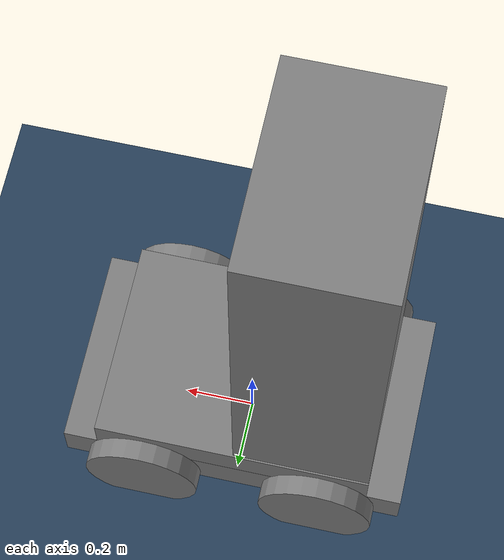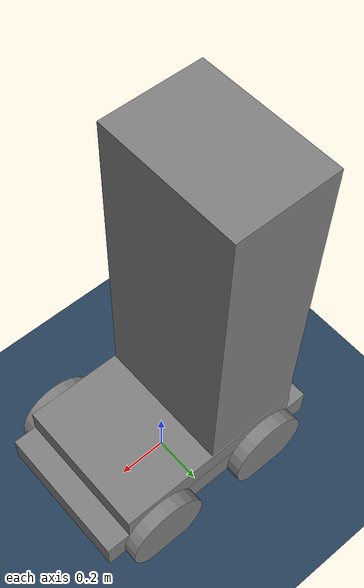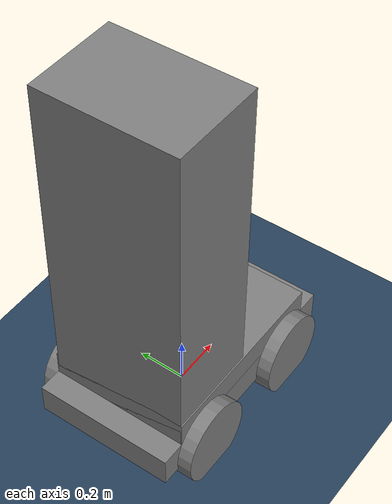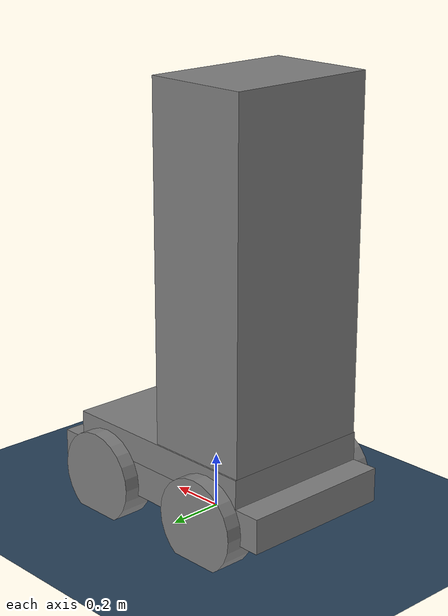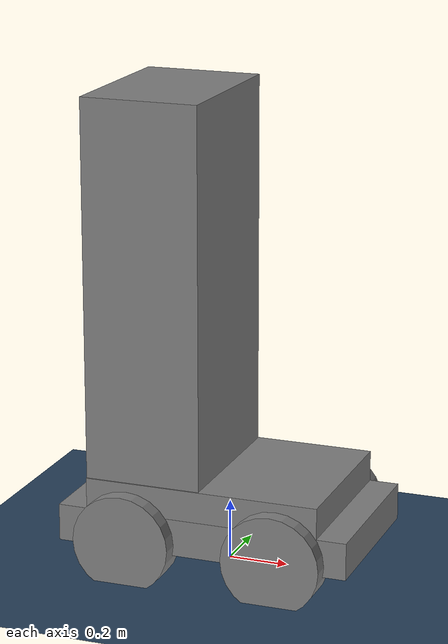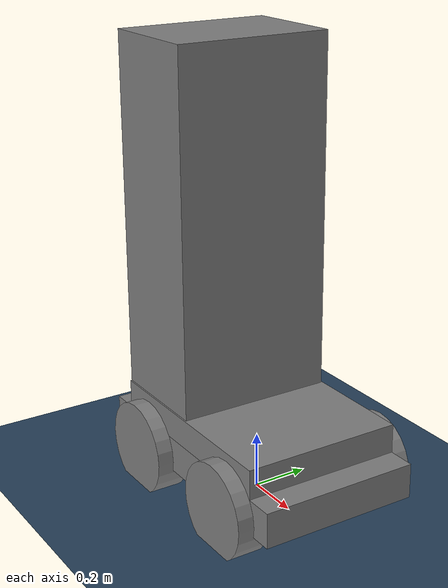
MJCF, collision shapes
<mujoco model="husky scene">
  <include file="husky.xml"/>

  <statistic center="0.2 0 0.4" extent=".8"/>

  <visual>
    <headlight diffuse="0.6 0.6 0.6" ambient="0.3 0.3 0.3" specular="0 0 0"/>
    <rgba haze="0.15 0.25 0.35 1"/>
    <global azimuth="120" elevation="-20"/>
  </visual>

  <asset>
    <texture type="skybox" builtin="gradient" rgb1="0.3 0.5 0.7" rgb2="0 0 0" width="512" height="3072"/>
    <texture type="2d" name="groundplane" builtin="checker" mark="edge" rgb1="0.2 0.3 0.4" rgb2="0.1 0.2 0.3"
      markrgb="0.8 0.8 0.8" width="300" height="300"/>
    <material name="groundplane" texture="groundplane" texuniform="true" texrepeat="5 5" reflectance="0.2"/>
  </asset>

  <worldbody>
    <light pos="0 0 1.5" dir="0 0 -1" directional="true"/>
    <geom name="floor" size="0 0 0.05" type="plane" material="groundplane"/>
  </worldbody>
</mujoco>

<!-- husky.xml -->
<mujoco model="husky">
    <compiler angle="radian" meshdir="assets"/>

  <option integrator="implicitfast"/>

    <default>
        <default class="husky">
            <material specular="0.5" shininess="0.25"/>
            <joint armature="0.1" damping="1"/>
            <position inheritrange="1"/>
            <default class="visual">
                <geom type="mesh" group="2" contype="0" conaffinity="0"/>
            </default>
            <default class="collision">
                <geom type="mesh" group="3" mass="0" density="0"/>
            </default>
            <site size="0.001" rgba="0.5 0.5 0.5 0.3" group="4"/>
        </default>
    </default>

    <asset>
        <material class="husky" name="husky_orange" rgba="0.996 0.941 0.412 1.0"/>
        <material class="husky" name="husky_black" rgba="0.231 0.231 0.231 1.0"/>

        <mesh name="base_link"     file="base_link.stl"/>
        <mesh name="wheel"         file="wheel.stl"/>
        <mesh name="bumper"        file="bumper.stl"/>
        <mesh name="top_chassis"   file="top_chassis.stl"/>
        <mesh name="top_structure" file="roas_dyros.STL"/>
        <mesh name="top_plate"     file="top_plate.stl"/>
        <mesh name="user_rail"     file="user_rail.stl"/>
    </asset>

    <worldbody>
        <body name="base_footprint" pos="0 0 0.1">
            <joint type="free" stiffness="0" damping="0" frictionloss="0" armature="0" />

            <body name="base" pos="0 0 0">
                <inertial pos="-0.00065 -0.085 0.062"  mass="46.034" fullinertia="0.6022 1.7386 2.0296 -0.02364 -0.1197 -0.001544"/>
                <geom class="collision" size="0.4937 0.28545 0.061875" pos="0 0 0.061875" type="box"/>
                <geom class="collision" size="0.39496 0.28545 0.051875" pos="0 0 0.175625" type="box"/>
                <geom class="visual" pos="0.272 0 0.245" type="mesh" mesh="user_rail" material="husky_black"/>
                <geom class="visual" pos="0.0812 0 0.245" type="mesh" mesh="top_plate" material="husky_black"/>
                <geom class="visual" pos="-0.48 0 0.091" quat="0 0 1 0" type="mesh" mesh="bumper" rgba="0.2 0.2 0.2 1.0"/>
                <geom class="visual" pos="0.48 0 0.091" type="mesh" mesh="bumper" rgba="0.2 0.2 0.2 1.0"/>
                <geom class="visual" pos="0 0 0" type="mesh" mesh="base_link" rgba="0.8 0.8 0.0 1.0"/>
                <geom class="visual" pos="0 0 0" type="mesh" mesh="top_chassis" rgba="0.8 0.8 0.0 1.0"/>
                <site name="husky_site"  size = "0.005" rgba = ".1 .1 .9 1" type = "sphere" />

                <body name="top_structure_link" pos="0 0 0">
                    <inertial pos="-0.2 0 0.85" mass="40"
                        fullinertia="1.95397859e-01 1.92679403e-01 1.01958752e-01 7.23330468e-08 2.01114568e-02 -7.81325404e-05"/>
                    <geom class="visual" pos="0 0 0" type="mesh" mesh="top_structure" material="husky_black"/>
                    <geom class="collision" size="0.19496 0.28 0.6825" pos="-0.2 0 0.8" type="box"/>
                </body>

                <body name="front_left_wheel" pos="0.256 0.2854 0.03282">
                    <inertial pos="0 0 0" quat="0.707107 0 0 0.707107" mass="2.637" diaginertia="0.04411 0.02467 0.02467"/>
                    <joint name="front_left_wheel" type="hinge" pos="0 0 0" axis="0 1 0"/>
                    <geom class="visual" pos="0 0 0" quat="0 0 0 1" mesh="wheel" material="husky_black"/>
                    <geom class="collision" size="0.1651 0.05715" quat="0.707107 0.707106 0 0" type="cylinder"/>
                </body>

                <body name="front_right_wheel" pos="0.256 -0.2854 0.03282">
                    <inertial pos="0 0 0" quat="0.707107 0 0 0.707107" mass="2.637" diaginertia="0.04411 0.02467 0.02467"/>
                    <joint name="front_right_wheel" type="hinge" pos="0 0 0" axis="0 1 0"/>
                    <geom class="visual" pos="0 0 0" quat="0 0 0 1" mesh="wheel" material="husky_black"/>
                    <geom class="collision" size="0.1651 0.05715" quat="0.707107 0.707106 0 0" type="cylinder"/>
                </body>

                <body name="rear_left_wheel" pos="-0.256 0.2854 0.03282">
                    <inertial pos="0 0 0" quat="0.707107 0 0 0.707107" mass="2.637" diaginertia="0.04411 0.02467 0.02467"/>
                    <joint name="rear_left_wheel" type="hinge" pos="0 0 0" axis="0 1 0"/>
                    <geom class="visual" pos="0 0 0" quat="0 0 0 1" mesh="wheel" material="husky_black"/>
                    <geom class="collision" size="0.1651 0.05715" quat="0.707107 0.707106 0 0" type="cylinder"/>
                </body>

                <body name="rear_right_wheel" pos="-0.256 -0.2854 0.03282">
                    <inertial pos="0 0 0" quat="0.707107 0 0 0.707107" mass="2.637" diaginertia="0.04411 0.02467 0.02467"/>
                    <joint name="rear_right_wheel" type="hinge" pos="0 0 0" axis="0 1 0" />
                    <geom class="visual" pos="0 0 0" quat="0 0 0 1" mesh="wheel" material="husky_black"/>
                    <geom class="collision" size="0.1651 0.05715" quat="0.707107 0.707106 0 0" type="cylinder"/>
                </body>
            </body>
        </body>
    </worldbody>

    <actuator>
        <velocity name="left_wheel"  joint="front_left_wheel"  kv="140" forcerange="-87 87" ctrlrange="-2.8973 2.8973"/>
        <velocity name="right_wheel" joint="front_right_wheel" kv="140" forcerange="-87 87" ctrlrange="-2.8973 2.8973"/>

    </actuator>

    <sensor>
        <framepos name="position_sensor" objtype="site" objname="husky_site"/>
        <framequat name="orientation_sensor" objtype="site" objname="husky_site"/>
        <framelinvel name="linear_velocity_sensor" objtype="site" objname="husky_site"/>
        <frameangvel name="angular_velocity_sensor" objtype="site" objname="husky_site"/>
    </sensor>

    <equality>
        <joint name="left_wheels_gear"
            joint1="front_left_wheel"
            joint2="rear_left_wheel"
            polycoef="0 1 0 0 0"/>

        <joint name="right_wheels_gear"
            joint1="front_right_wheel"
            joint2="rear_right_wheel"
            polycoef="0 1 0 0 0"/>
    </equality>

</mujoco>
